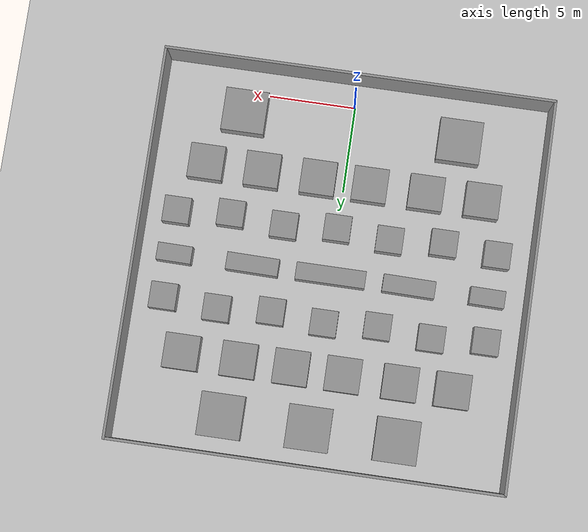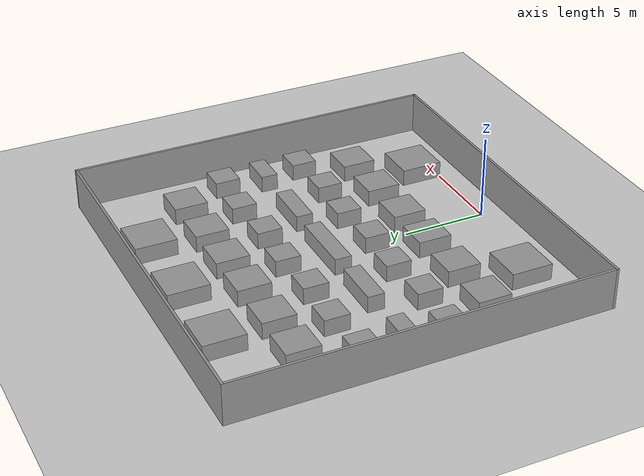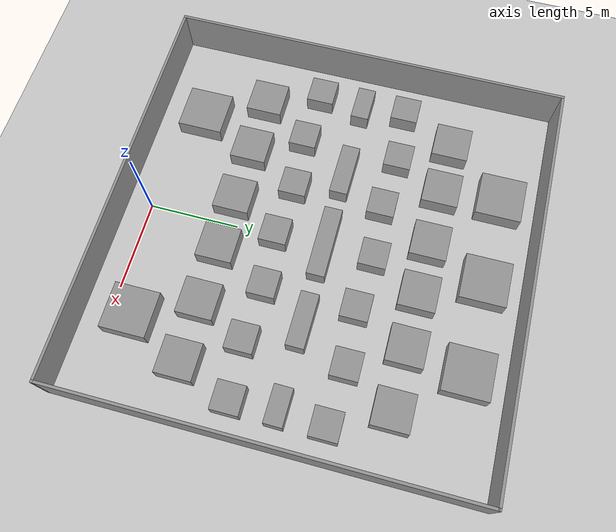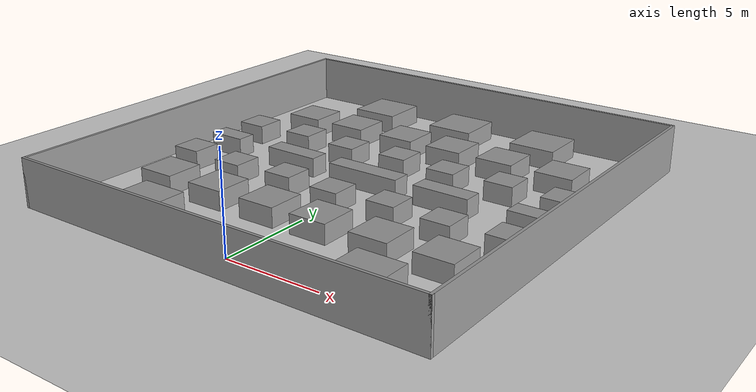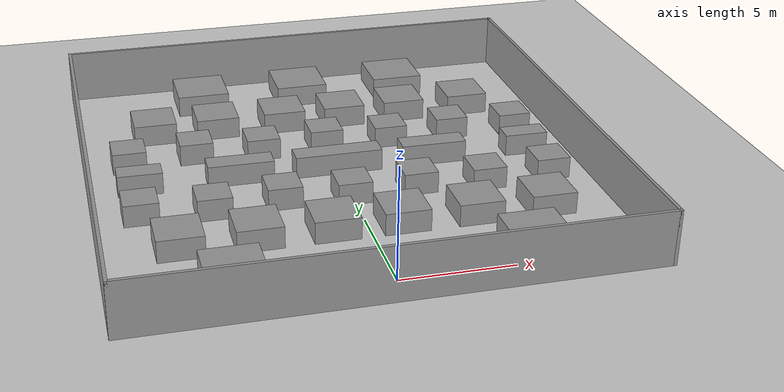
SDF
<sdf version="1.6">
 <world name="default">
  <light name="sun" type="directional">
   <pose>0 0 10 0 -0 0</pose>
   <diffuse>0.8 0.8 0.8 1</diffuse>
   <specular>0.2 0.2 0.2 1</specular>
   <attenuation>
    <range>1000</range>
    <constant>0.9</constant>
    <linear>0.01</linear>
    <quadratic>0.001</quadratic>
   </attenuation>
   <direction>-0.5 0.1 -0.9</direction>
   <spot><inner_angle>0</inner_angle><outer_angle>0</outer_angle><falloff>0</falloff></spot>
  </light>
  <model name="ground_plane">
   <static>1</static>
   <link name="link">
    <collision name="collision">
     <geometry><plane><normal>0 0 1</normal><size>100 100</size></plane></geometry>
     <surface>
      <contact><collide_bitmask>65535</collide_bitmask></contact>
      <friction><ode><mu>100</mu><mu2>50</mu2></ode></friction>
     </surface>
    </collision>
    <visual name="visual">
     <cast_shadows>0</cast_shadows>
     <geometry><plane><normal>0 0 1</normal><size>100 100</size></plane></geometry>
     <material>
      <script><uri>file://media/materials/scripts/gazebo.material</uri><name>Gazebo/Grey</name></script>
     </material>
    </visual>
   </link>
  </model>
  <gravity>0 0 -9.8</gravity>
  <magnetic_field>6e-06 2.3e-05 -4.2e-05</magnetic_field>
  <atmosphere type="adiabatic"/>
  <physics name="default_physics" default="0" type="ode">
   <max_step_size>0.001</max_step_size>
   <real_time_factor>1</real_time_factor>
   <real_time_update_rate>1000</real_time_update_rate>
  </physics>
  <scene><ambient>0.4 0.4 0.4 1</ambient><background>0.7 0.7 0.7 1</background><shadows>1</shadows></scene>
  <audio><device>default</device></audio>
  <spherical_coordinates>
   <surface_model>EARTH_WGS84</surface_model>
   <latitude_deg>0</latitude_deg>
   <longitude_deg>0</longitude_deg>
   <elevation>0</elevation>
   <heading_deg>0</heading_deg>
  </spherical_coordinates>
  <model name="unit_box_clone">
   <pose>4.99617 18.75 0.499939 0 4.9e-05 -7e-06</pose>
   <link name="link">
    <inertial>
     <mass>1</mass>
     <inertia>
      <ixx>0.166667</ixx>
      <ixy>0</ixy>
      <ixz>0</ixz>
      <iyy>0.166667</iyy>
      <iyz>0</iyz>
      <izz>0.166667</izz>
     </inertia>
    </inertial>
    <collision name="collision"><geometry><box><size>2.48699 2.49486 1</size></box></geometry></collision>
    <visual name="visual">
     <geometry><box><size>2.48699 2.49486 1</size></box></geometry>
     <material>
      <script><name>Gazebo/Grey</name><uri>file://media/materials/scripts/gazebo.material</uri></script>
     </material>
    </visual>
   </link>
  </model>
  <model name="unit_box_clone_0">
   <pose>-5.00383 18.75 0.499939 0 4.9e-05 -5e-06</pose>
   <link name="link">
    <inertial>
     <mass>1</mass>
     <inertia>
      <ixx>0.166667</ixx>
      <ixy>0</ixy>
      <ixz>0</ixz>
      <iyy>0.166667</iyy>
      <iyz>0</iyz>
      <izz>0.166667</izz>
     </inertia>
    </inertial>
    <collision name="collision"><geometry><box><size>2.48699 2.49486 1</size></box></geometry></collision>
    <visual name="visual">
     <geometry><box><size>2.48699 2.49486 1</size></box></geometry>
     <material>
      <script><name>Gazebo/Grey</name><uri>file://media/materials/scripts/gazebo.material</uri></script>
     </material>
    </visual>
   </link>
  </model>
  <model name="unit_box_clone_1">
   <pose>6.24617 1.25 0.499939 0 4.9e-05 -5e-06</pose>
   <link name="link">
    <inertial>
     <mass>1</mass>
     <inertia>
      <ixx>0.166667</ixx>
      <ixy>0</ixy>
      <ixz>0</ixz>
      <iyy>0.166667</iyy>
      <iyz>0</iyz>
      <izz>0.166667</izz>
     </inertia>
    </inertial>
    <collision name="collision"><geometry><box><size>2.48699 2.49486 1</size></box></geometry></collision>
    <visual name="visual">
     <geometry><box><size>2.48699 2.49486 1</size></box></geometry>
     <material>
      <script><name>Gazebo/Grey</name><uri>file://media/materials/scripts/gazebo.material</uri></script>
     </material>
    </visual>
   </link>
  </model>
  <model name="unit_box_clone_2">
   <pose>-6.25383 1.25 0.499939 0 4.9e-05 -5e-06</pose>
   <link name="link">
    <inertial>
     <mass>1</mass>
     <inertia>
      <ixx>0.166667</ixx>
      <ixy>0</ixy>
      <ixz>0</ixz>
      <iyy>0.166667</iyy>
      <iyz>0</iyz>
      <izz>0.166667</izz>
     </inertia>
    </inertial>
    <collision name="collision"><geometry><box><size>2.48699 2.49486 1</size></box></geometry></collision>
    <visual name="visual">
     <geometry><box><size>2.48699 2.49486 1</size></box></geometry>
     <material>
      <script><name>Gazebo/Grey</name><uri>file://media/materials/scripts/gazebo.material</uri></script>
     </material>
    </visual>
   </link>
  </model>
  <model name="unit_box_clone_clone">
   <pose>-1e-06 18.7514 0.499938 5e-05 -0 0.001456</pose>
   <link name="link">
    <inertial>
     <mass>1</mass>
     <inertia>
      <ixx>0.166667</ixx>
      <ixy>0</ixy>
      <ixz>0</ixz>
      <iyy>0.166667</iyy>
      <iyz>0</iyz>
      <izz>0.166667</izz>
     </inertia>
    </inertial>
    <collision name="collision"><geometry><box><size>2.48699 2.49486 1</size></box></geometry></collision>
    <visual name="visual">
     <geometry><box><size>2.48699 2.49486 1</size></box></geometry>
     <material>
      <script><name>Gazebo/Grey</name><uri>file://media/materials/scripts/gazebo.material</uri></script>
     </material>
    </visual>
   </link>
  </model>
  <model name="unit_box_clone_3">
   <pose>-4.75163 15.5 0.499986 0 -1.4e-05 0</pose>
   <link name="link">
    <inertial>
     <mass>1</mass>
     <inertia>
      <ixx>0.166667</ixx>
      <ixy>0</ixy>
      <ixz>0</ixz>
      <iyy>0.166667</iyy>
      <iyz>0</iyz>
      <izz>0.166667</izz>
     </inertia>
    </inertial>
    <collision name="collision"><geometry><box><size>2 1.99999 1</size></box></geometry></collision>
    <visual name="visual">
     <geometry><box><size>2 1.99999 1</size></box></geometry>
     <material>
      <script><name>Gazebo/Grey</name><uri>file://media/materials/scripts/gazebo.material</uri></script>
     </material>
    </visual>
   </link>
  </model>
  <model name="unit_box_clone_4">
   <pose>-1.50163 15.5 0.499986 0 -1.4e-05 0</pose>
   <link name="link">
    <inertial>
     <mass>1</mass>
     <inertia>
      <ixx>0.166667</ixx>
      <ixy>0</ixy>
      <ixz>0</ixz>
      <iyy>0.166667</iyy>
      <iyz>0</iyz>
      <izz>0.166667</izz>
     </inertia>
    </inertial>
    <collision name="collision"><geometry><box><size>2 1.99999 1</size></box></geometry></collision>
    <visual name="visual">
     <geometry><box><size>2 1.99999 1</size></box></geometry>
     <material>
      <script><name>Gazebo/Grey</name><uri>file://media/materials/scripts/gazebo.material</uri></script>
     </material>
    </visual>
   </link>
  </model>
  <model name="unit_box_clone_5">
   <pose>1.46463 15.5 0.499986 0 1.4e-05 1e-06</pose>
   <link name="link">
    <inertial>
     <mass>1</mass>
     <inertia>
      <ixx>0.166667</ixx>
      <ixy>0</ixy>
      <ixz>0</ixz>
      <iyy>0.166667</iyy>
      <iyz>0</iyz>
      <izz>0.166667</izz>
     </inertia>
    </inertial>
    <collision name="collision"><geometry><box><size>2 1.99999 1</size></box></geometry></collision>
    <visual name="visual">
     <geometry><box><size>2 1.99999 1</size></box></geometry>
     <material>
      <script><name>Gazebo/Grey</name><uri>file://media/materials/scripts/gazebo.material</uri></script>
     </material>
    </visual>
   </link>
  </model>
  <model name="unit_box_clone_6">
   <pose>7.74837 15.5 0.499986 0 -1.4e-05 0</pose>
   <link name="link">
    <inertial>
     <mass>1</mass>
     <inertia>
      <ixx>0.166667</ixx>
      <ixy>0</ixy>
      <ixz>0</ixz>
      <iyy>0.166667</iyy>
      <iyz>0</iyz>
      <izz>0.166667</izz>
     </inertia>
    </inertial>
    <collision name="collision"><geometry><box><size>2 1.99999 1</size></box></geometry></collision>
    <visual name="visual">
     <geometry><box><size>2 1.99999 1</size></box></geometry>
     <material>
      <script><name>Gazebo/Grey</name><uri>file://media/materials/scripts/gazebo.material</uri></script>
     </material>
    </visual>
   </link>
  </model>
  <model name="unit_box_clone_7">
   <pose>4.46893 15.5001 0.499986 0 1.4e-05 9.3e-05</pose>
   <link name="link">
    <inertial>
     <mass>1</mass>
     <inertia>
      <ixx>0.166667</ixx>
      <ixy>0</ixy>
      <ixz>0</ixz>
      <iyy>0.166667</iyy>
      <iyz>0</iyz>
      <izz>0.166667</izz>
     </inertia>
    </inertial>
    <collision name="collision"><geometry><box><size>2 1.99999 1</size></box></geometry></collision>
    <visual name="visual">
     <geometry><box><size>2 1.99999 1</size></box></geometry>
     <material>
      <script><name>Gazebo/Grey</name><uri>file://media/materials/scripts/gazebo.material</uri></script>
     </material>
    </visual>
   </link>
  </model>
  <model name="unit_box_clone_8">
   <pose>-8.00163 4.5 0.499986 0 -1.4e-05 0</pose>
   <link name="link">
    <inertial>
     <mass>1</mass>
     <inertia>
      <ixx>0.166667</ixx>
      <ixy>0</ixy>
      <ixz>0</ixz>
      <iyy>0.166667</iyy>
      <iyz>0</iyz>
      <izz>0.166667</izz>
     </inertia>
    </inertial>
    <collision name="collision"><geometry><box><size>2 1.99999 1</size></box></geometry></collision>
    <visual name="visual">
     <geometry><box><size>2 1.99999 1</size></box></geometry>
     <material>
      <script><name>Gazebo/Grey</name><uri>file://media/materials/scripts/gazebo.material</uri></script>
     </material>
    </visual>
   </link>
  </model>
  <model name="unit_box_clone_9">
   <pose>-4.74838 4.5 0.499986 0 1.4e-05 0</pose>
   <link name="link">
    <inertial>
     <mass>1</mass>
     <inertia>
      <ixx>0.166667</ixx>
      <ixy>0</ixy>
      <ixz>0</ixz>
      <iyy>0.166667</iyy>
      <iyz>0</iyz>
      <izz>0.166667</izz>
     </inertia>
    </inertial>
    <collision name="collision"><geometry><box><size>2 1.99999 1</size></box></geometry></collision>
    <visual name="visual">
     <geometry><box><size>2 1.99999 1</size></box></geometry>
     <material>
      <script><name>Gazebo/Grey</name><uri>file://media/materials/scripts/gazebo.material</uri></script>
     </material>
    </visual>
   </link>
  </model>
  <model name="unit_box_clone_10">
   <pose>-1.50163 4.5 0.499986 0 -1.4e-05 0</pose>
   <link name="link">
    <inertial>
     <mass>1</mass>
     <inertia>
      <ixx>0.166667</ixx>
      <ixy>0</ixy>
      <ixz>0</ixz>
      <iyy>0.166667</iyy>
      <iyz>0</iyz>
      <izz>0.166667</izz>
     </inertia>
    </inertial>
    <collision name="collision"><geometry><box><size>2 1.99999 1</size></box></geometry></collision>
    <visual name="visual">
     <geometry><box><size>2 1.99999 1</size></box></geometry>
     <material>
      <script><name>Gazebo/Grey</name><uri>file://media/materials/scripts/gazebo.material</uri></script>
     </material>
    </visual>
   </link>
  </model>
  <model name="unit_box_clone_11">
   <pose>1.50162 4.5 0.499986 0 1.4e-05 0</pose>
   <link name="link">
    <inertial>
     <mass>1</mass>
     <inertia>
      <ixx>0.166667</ixx>
      <ixy>0</ixy>
      <ixz>0</ixz>
      <iyy>0.166667</iyy>
      <iyz>0</iyz>
      <izz>0.166667</izz>
     </inertia>
    </inertial>
    <collision name="collision"><geometry><box><size>2 1.99999 1</size></box></geometry></collision>
    <visual name="visual">
     <geometry><box><size>2 1.99999 1</size></box></geometry>
     <material>
      <script><name>Gazebo/Grey</name><uri>file://media/materials/scripts/gazebo.material</uri></script>
     </material>
    </visual>
   </link>
  </model>
  <model name="unit_box_clone_12">
   <pose>4.75163 4.5 0.499986 0 1.4e-05 0</pose>
   <link name="link">
    <inertial>
     <mass>1</mass>
     <inertia>
      <ixx>0.166667</ixx>
      <ixy>0</ixy>
      <ixz>0</ixz>
      <iyy>0.166667</iyy>
      <iyz>0</iyz>
      <izz>0.166667</izz>
     </inertia>
    </inertial>
    <collision name="collision"><geometry><box><size>2 1.99999 1</size></box></geometry></collision>
    <visual name="visual">
     <geometry><box><size>2 1.99999 1</size></box></geometry>
     <material>
      <script><name>Gazebo/Grey</name><uri>file://media/materials/scripts/gazebo.material</uri></script>
     </material>
    </visual>
   </link>
  </model>
  <model name="unit_box_clone_13">
   <pose>8.00005 4.50076 0.499986 -1.4e-05 0 0</pose>
   <link name="link">
    <inertial>
     <mass>1</mass>
     <inertia>
      <ixx>0.166667</ixx>
      <ixy>0</ixy>
      <ixz>0</ixz>
      <iyy>0.166667</iyy>
      <iyz>0</iyz>
      <izz>0.166667</izz>
     </inertia>
    </inertial>
    <collision name="collision"><geometry><box><size>2 1.99999 1</size></box></geometry></collision>
    <visual name="visual">
     <geometry><box><size>2 1.99999 1</size></box></geometry>
     <material>
      <script><name>Gazebo/Grey</name><uri>file://media/materials/scripts/gazebo.material</uri></script>
     </material>
    </visual>
   </link>
  </model>
  <model name="unit_box_0">
   <pose>-9.2501 12.4999 0.499995 -6e-06 0 0.000111</pose>
   <link name="link">
    <inertial>
     <mass>1</mass>
     <inertia>
      <ixx>0.166667</ixx>
      <ixy>0</ixy>
      <ixz>0</ixz>
      <iyy>0.166667</iyy>
      <iyz>0</iyz>
      <izz>0.166667</izz>
     </inertia>
    </inertial>
    <collision name="collision"><geometry><box><size>1.53738 1.51579 1</size></box></geometry></collision>
    <visual name="visual">
     <geometry><box><size>1.53738 1.51579 1</size></box></geometry>
     <material>
      <script><name>Gazebo/Grey</name><uri>file://media/materials/scripts/gazebo.material</uri></script>
     </material>
    </visual>
   </link>
  </model>
  <model name="unit_box_0_clone">
   <pose>-6.14987 12.75 0.499995 -6e-06 0 5.7e-05</pose>
   <link name="link">
    <inertial>
     <mass>1</mass>
     <inertia>
      <ixx>0.166667</ixx>
      <ixy>0</ixy>
      <ixz>0</ixz>
      <iyy>0.166667</iyy>
      <iyz>0</iyz>
      <izz>0.166667</izz>
     </inertia>
    </inertial>
    <collision name="collision"><geometry><box><size>1.53738 1.5158 1</size></box></geometry></collision>
    <visual name="visual">
     <geometry><box><size>1.53738 1.5158 1</size></box></geometry>
     <material>
      <script><name>Gazebo/Grey</name><uri>file://media/materials/scripts/gazebo.material</uri></script>
     </material>
    </visual>
   </link>
  </model>
  <model name="unit_box_0_clone_0">
   <pose>-3.05003 12.4998 0.499995 0 6e-06 4.8e-05</pose>
   <link name="link">
    <inertial>
     <mass>1</mass>
     <inertia>
      <ixx>0.166667</ixx>
      <ixy>0</ixy>
      <ixz>0</ixz>
      <iyy>0.166667</iyy>
      <iyz>0</iyz>
      <izz>0.166667</izz>
     </inertia>
    </inertial>
    <collision name="collision"><geometry><box><size>1.53738 1.5158 1</size></box></geometry></collision>
    <visual name="visual">
     <geometry><box><size>1.53738 1.5158 1</size></box></geometry>
     <material>
      <script><name>Gazebo/Grey</name><uri>file://media/materials/scripts/gazebo.material</uri></script>
     </material>
    </visual>
   </link>
  </model>
  <model name="unit_box_0_clone_1">
   <pose>3.1e-05 12.7502 0.499995 0 -6e-06 3.7e-05</pose>
   <link name="link">
    <inertial>
     <mass>1</mass>
     <inertia>
      <ixx>0.166667</ixx>
      <ixy>0</ixy>
      <ixz>0</ixz>
      <iyy>0.166667</iyy>
      <iyz>0</iyz>
      <izz>0.166667</izz>
     </inertia>
    </inertial>
    <collision name="collision"><geometry><box><size>1.53738 1.5158 1</size></box></geometry></collision>
    <visual name="visual">
     <geometry><box><size>1.53738 1.5158 1</size></box></geometry>
     <material>
      <script><name>Gazebo/Grey</name><uri>file://media/materials/scripts/gazebo.material</uri></script>
     </material>
    </visual>
   </link>
  </model>
  <model name="unit_box_0_clone_2">
   <pose>3.05003 12.5001 0.499995 0 -6e-06 3.5e-05</pose>
   <link name="link">
    <inertial>
     <mass>1</mass>
     <inertia>
      <ixx>0.166667</ixx>
      <ixy>0</ixy>
      <ixz>0</ixz>
      <iyy>0.166667</iyy>
      <iyz>0</iyz>
      <izz>0.166667</izz>
     </inertia>
    </inertial>
    <collision name="collision"><geometry><box><size>1.53738 1.5158 1</size></box></geometry></collision>
    <visual name="visual">
     <geometry><box><size>1.53738 1.5158 1</size></box></geometry>
     <material>
      <script><name>Gazebo/Grey</name><uri>file://media/materials/scripts/gazebo.material</uri></script>
     </material>
    </visual>
   </link>
  </model>
  <model name="unit_box_0_clone_3">
   <pose>6.15003 12.7501 0.499995 0 -6e-06 3.4e-05</pose>
   <link name="link">
    <inertial>
     <mass>1</mass>
     <inertia>
      <ixx>0.166667</ixx>
      <ixy>0</ixy>
      <ixz>0</ixz>
      <iyy>0.166667</iyy>
      <iyz>0</iyz>
      <izz>0.166667</izz>
     </inertia>
    </inertial>
    <collision name="collision"><geometry><box><size>1.53738 1.5158 1</size></box></geometry></collision>
    <visual name="visual">
     <geometry><box><size>1.53738 1.5158 1</size></box></geometry>
     <material>
      <script><name>Gazebo/Grey</name><uri>file://media/materials/scripts/gazebo.material</uri></script>
     </material>
    </visual>
   </link>
  </model>
  <model name="unit_box_0_clone_4">
   <pose>9.24998 12.4999 0.499995 0 6e-06 5.9e-05</pose>
   <link name="link">
    <inertial>
     <mass>1</mass>
     <inertia>
      <ixx>0.166667</ixx>
      <ixy>0</ixy>
      <ixz>0</ixz>
      <iyy>0.166667</iyy>
      <iyz>0</iyz>
      <izz>0.166667</izz>
     </inertia>
    </inertial>
    <collision name="collision"><geometry><box><size>1.53738 1.5158 1</size></box></geometry></collision>
    <visual name="visual">
     <geometry><box><size>1.53738 1.5158 1</size></box></geometry>
     <material>
      <script><name>Gazebo/Grey</name><uri>file://media/materials/scripts/gazebo.material</uri></script>
     </material>
    </visual>
   </link>
  </model>
  <model name="unit_box_0_clone_4_clone">
   <pose>9.24999 7.49988 0.499995 0 6e-06 5.7e-05</pose>
   <link name="link">
    <inertial>
     <mass>1</mass>
     <inertia>
      <ixx>0.166667</ixx>
      <ixy>0</ixy>
      <ixz>0</ixz>
      <iyy>0.166667</iyy>
      <iyz>0</iyz>
      <izz>0.166667</izz>
     </inertia>
    </inertial>
    <collision name="collision"><geometry><box><size>1.53738 1.5158 1</size></box></geometry></collision>
    <visual name="visual">
     <geometry><box><size>1.53738 1.5158 1</size></box></geometry>
     <material>
      <script><name>Gazebo/Grey</name><uri>file://media/materials/scripts/gazebo.material</uri></script>
     </material>
    </visual>
   </link>
  </model>
  <model name="unit_box_0_clone_4_clone_0">
   <pose>6.14991 7.25005 0.499995 -6e-06 -0 0.000106</pose>
   <link name="link">
    <inertial>
     <mass>1</mass>
     <inertia>
      <ixx>0.166667</ixx>
      <ixy>0</ixy>
      <ixz>0</ixz>
      <iyy>0.166667</iyy>
      <iyz>0</iyz>
      <izz>0.166667</izz>
     </inertia>
    </inertial>
    <collision name="collision"><geometry><box><size>1.53738 1.5158 1</size></box></geometry></collision>
    <visual name="visual">
     <geometry><box><size>1.53738 1.5158 1</size></box></geometry>
     <material>
      <script><name>Gazebo/Grey</name><uri>file://media/materials/scripts/gazebo.material</uri></script>
     </material>
    </visual>
   </link>
  </model>
  <model name="unit_box_0_clone_4_clone_1">
   <pose>3.05009 7.50005 0.499995 -6e-06 -0 -1.5e-05</pose>
   <link name="link">
    <inertial>
     <mass>1</mass>
     <inertia>
      <ixx>0.166667</ixx>
      <ixy>0</ixy>
      <ixz>0</ixz>
      <iyy>0.166667</iyy>
      <iyz>0</iyz>
      <izz>0.166667</izz>
     </inertia>
    </inertial>
    <collision name="collision"><geometry><box><size>1.53738 1.5158 1</size></box></geometry></collision>
    <visual name="visual">
     <geometry><box><size>1.53738 1.5158 1</size></box></geometry>
     <material>
      <script><name>Gazebo/Grey</name><uri>file://media/materials/scripts/gazebo.material</uri></script>
     </material>
    </visual>
   </link>
  </model>
  <model name="unit_box_0_clone_4_clone_2">
   <pose>5e-05 7.2499 0.499995 -0 6e-06 -2.2e-05</pose>
   <link name="link">
    <inertial>
     <mass>1</mass>
     <inertia>
      <ixx>0.166667</ixx>
      <ixy>0</ixy>
      <ixz>0</ixz>
      <iyy>0.166667</iyy>
      <iyz>0</iyz>
      <izz>0.166667</izz>
     </inertia>
    </inertial>
    <collision name="collision"><geometry><box><size>1.53738 1.5158 1</size></box></geometry></collision>
    <visual name="visual">
     <geometry><box><size>1.53738 1.5158 1</size></box></geometry>
     <material>
      <script><name>Gazebo/Grey</name><uri>file://media/materials/scripts/gazebo.material</uri></script>
     </material>
    </visual>
   </link>
  </model>
  <model name="unit_box_0_clone_4_clone_3">
   <pose>-3.04996 7.49991 0.499995 0 6e-06 -2.5e-05</pose>
   <link name="link">
    <inertial>
     <mass>1</mass>
     <inertia>
      <ixx>0.166667</ixx>
      <ixy>0</ixy>
      <ixz>0</ixz>
      <iyy>0.166667</iyy>
      <iyz>0</iyz>
      <izz>0.166667</izz>
     </inertia>
    </inertial>
    <collision name="collision"><geometry><box><size>1.53738 1.5158 1</size></box></geometry></collision>
    <visual name="visual">
     <geometry><box><size>1.53738 1.5158 1</size></box></geometry>
     <material>
      <script><name>Gazebo/Grey</name><uri>file://media/materials/scripts/gazebo.material</uri></script>
     </material>
    </visual>
   </link>
  </model>
  <model name="unit_box_0_clone_4_clone_4">
   <pose>-6.15003 7.25009 0.499995 -0 -6e-06 -3.6e-05</pose>
   <link name="link">
    <inertial>
     <mass>1</mass>
     <inertia>
      <ixx>0.166667</ixx>
      <ixy>0</ixy>
      <ixz>0</ixz>
      <iyy>0.166667</iyy>
      <iyz>0</iyz>
      <izz>0.166667</izz>
     </inertia>
    </inertial>
    <collision name="collision"><geometry><box><size>1.53738 1.5158 1</size></box></geometry></collision>
    <visual name="visual">
     <geometry><box><size>1.53738 1.5158 1</size></box></geometry>
     <material>
      <script><name>Gazebo/Grey</name><uri>file://media/materials/scripts/gazebo.material</uri></script>
     </material>
    </visual>
   </link>
  </model>
  <model name="unit_box_0_clone_4_clone_5">
   <pose>-9.25003 7.50009 0.499995 0 -6e-06 4e-06</pose>
   <link name="link">
    <inertial>
     <mass>1</mass>
     <inertia>
      <ixx>0.166667</ixx>
      <ixy>0</ixy>
      <ixz>0</ixz>
      <iyy>0.166667</iyy>
      <iyz>0</iyz>
      <izz>0.166667</izz>
     </inertia>
    </inertial>
    <collision name="collision"><geometry><box><size>1.53738 1.5158 1</size></box></geometry></collision>
    <visual name="visual">
     <geometry><box><size>1.53738 1.5158 1</size></box></geometry>
     <material>
      <script><name>Gazebo/Grey</name><uri>file://media/materials/scripts/gazebo.material</uri></script>
     </material>
    </visual>
   </link>
  </model>
  <model name="unit_box_1">
   <pose>-8.99998 10 0.499995 -5e-06 3e-06 -0.012997</pose>
   <link name="link">
    <inertial>
     <mass>1</mass>
     <inertia>
      <ixx>0.166667</ixx>
      <ixy>0</ixy>
      <ixz>0</ixz>
      <iyy>0.166667</iyy>
      <iyz>0</iyz>
      <izz>0.166667</izz>
     </inertia>
    </inertial>
    <collision name="collision"><geometry><box><size>2 1 1</size></box></geometry></collision>
    <visual name="visual">
     <geometry><box><size>2 1 1</size></box></geometry>
     <material>
      <script><name>Gazebo/Grey</name><uri>file://media/materials/scripts/gazebo.material</uri></script>
     </material>
    </visual>
   </link>
  </model>
  <model name="unit_box_2">
   <pose>-4.49989 10 0.499996 5e-06 -1e-06 -0.013449</pose>
   <link name="link">
    <inertial>
     <mass>1</mass>
     <inertia>
      <ixx>0.166667</ixx>
      <ixy>0</ixy>
      <ixz>0</ixz>
      <iyy>0.166667</iyy>
      <iyz>0</iyz>
      <izz>0.166667</izz>
     </inertia>
    </inertial>
    <collision name="collision"><geometry><box><size>3 1 1</size></box></geometry></collision>
    <visual name="visual">
     <geometry><box><size>3 1 1</size></box></geometry>
     <material>
      <script><name>Gazebo/Grey</name><uri>file://media/materials/scripts/gazebo.material</uri></script>
     </material>
    </visual>
   </link>
  </model>
  <model name="unit_box_3">
   <pose>-0.000104 10.0004 0.5 -1e-06 0 2e-06</pose>
   <link name="link">
    <inertial>
     <mass>1</mass>
     <inertia>
      <ixx>0.166667</ixx>
      <ixy>0</ixy>
      <ixz>0</ixz>
      <iyy>0.166667</iyy>
      <iyz>0</iyz>
      <izz>0.166667</izz>
     </inertia>
    </inertial>
    <collision name="collision"><geometry><box><size>4 1 1</size></box></geometry></collision>
    <visual name="visual">
     <geometry><box><size>4 1 1</size></box></geometry>
     <material>
      <script><name>Gazebo/Grey</name><uri>file://media/materials/scripts/gazebo.material</uri></script>
     </material>
    </visual>
   </link>
  </model>
  <model name="unit_box_clone_3_clone">
   <pose>-7.75082 15.5 0.499986 0 -1.4e-05 0</pose>
   <link name="link">
    <inertial>
     <mass>1</mass>
     <inertia>
      <ixx>0.166667</ixx>
      <ixy>0</ixy>
      <ixz>0</ixz>
      <iyy>0.166667</iyy>
      <iyz>0</iyz>
      <izz>0.166667</izz>
     </inertia>
    </inertial>
    <collision name="collision"><geometry><box><size>2 1.99999 1</size></box></geometry></collision>
    <visual name="visual">
     <geometry><box><size>2 1.99999 1</size></box></geometry>
     <material>
      <script><name>Gazebo/Grey</name><uri>file://media/materials/scripts/gazebo.material</uri></script>
     </material>
    </visual>
   </link>
  </model>
  <model name="unit_box_1_clone">
   <pose>9 10 0.499995 -6e-06 2e-06 -0.013075</pose>
   <link name="link">
    <inertial>
     <mass>1</mass>
     <inertia>
      <ixx>0.166667</ixx>
      <ixy>0</ixy>
      <ixz>0</ixz>
      <iyy>0.166667</iyy>
      <iyz>0</iyz>
      <izz>0.166667</izz>
     </inertia>
    </inertial>
    <collision name="collision"><geometry><box><size>2 1 1</size></box></geometry></collision>
    <visual name="visual">
     <geometry><box><size>2 1 1</size></box></geometry>
     <material>
      <script><name>Gazebo/Grey</name><uri>file://media/materials/scripts/gazebo.material</uri></script>
     </material>
    </visual>
   </link>
  </model>
  <model name="unit_box_2_clone">
   <pose>4.49994 9.99999 0.5 0 -0 -0.013451</pose>
   <link name="link">
    <inertial>
     <mass>1</mass>
     <inertia>
      <ixx>0.166667</ixx>
      <ixy>0</ixy>
      <ixz>0</ixz>
      <iyy>0.166667</iyy>
      <iyz>0</iyz>
      <izz>0.166667</izz>
     </inertia>
    </inertial>
    <collision name="collision"><geometry><box><size>3 1 1</size></box></geometry></collision>
    <visual name="visual">
     <geometry><box><size>3 1 1</size></box></geometry>
     <material>
      <script><name>Gazebo/Grey</name><uri>file://media/materials/scripts/gazebo.material</uri></script>
     </material>
    </visual>
   </link>
  </model>
  <model name="walls">
   <pose>-0.075801 9.72065 0 0 -0 0</pose>
   <link name="Wall_18">
    <collision name="Wall_18_Collision">
     <geometry><box><size>22.5 0.15 2.5</size></box></geometry>
     <pose>0 0 1.25 0 -0 0</pose>
    </collision>
    <visual name="Wall_18_Visual">
     <pose>0 0 1.25 0 -0 0</pose>
     <geometry><box><size>22.5 0.15 2.5</size></box></geometry>
     <material>
      <script><uri>file://media/materials/scripts/gazebo.material</uri><name>Gazebo/Grey</name></script>
      <ambient>1 1 1 1</ambient>
     </material>
     <meta><layer>0</layer></meta>
    </visual>
    <pose>-11.175 0 0 0 -0 1.5708</pose>
   </link>
   <link name="Wall_19">
    <collision name="Wall_19_Collision">
     <geometry><box><size>22.5 0.15 2.5</size></box></geometry>
     <pose>0 0 1.25 0 -0 0</pose>
    </collision>
    <visual name="Wall_19_Visual">
     <pose>0 0 1.25 0 -0 0</pose>
     <geometry><box><size>22.5 0.15 2.5</size></box></geometry>
     <material>
      <script><uri>file://media/materials/scripts/gazebo.material</uri><name>Gazebo/Grey</name></script>
      <ambient>1 1 1 1</ambient>
     </material>
     <meta><layer>0</layer></meta>
    </visual>
    <pose>0 11.175 0 0 -0 0</pose>
   </link>
   <link name="Wall_20">
    <collision name="Wall_20_Collision">
     <geometry><box><size>22.5 0.15 2.5</size></box></geometry>
     <pose>0 0 1.25 0 -0 0</pose>
    </collision>
    <visual name="Wall_20_Visual">
     <pose>0 0 1.25 0 -0 0</pose>
     <geometry><box><size>22.5 0.15 2.5</size></box></geometry>
     <material>
      <script><uri>file://media/materials/scripts/gazebo.material</uri><name>Gazebo/Grey</name></script>
      <ambient>1 1 1 1</ambient>
     </material>
     <meta><layer>0</layer></meta>
    </visual>
    <pose>11.175 0 0 0 -0 -1.5708</pose>
   </link>
   <link name="Wall_4">
    <collision name="Wall_4_Collision">
     <geometry><box><size>22.5 0.15 2.5</size></box></geometry>
     <pose>0 0 1.25 0 -0 0</pose>
    </collision>
    <visual name="Wall_4_Visual">
     <pose>0 0 1.25 0 -0 0</pose>
     <geometry><box><size>22.5 0.15 2.5</size></box></geometry>
     <material>
      <script><uri>file://media/materials/scripts/gazebo.material</uri><name>Gazebo/Grey</name></script>
      <ambient>1 1 1 1</ambient>
     </material>
     <meta><layer>0</layer></meta>
    </visual>
    <pose>0 -11.175 0 0 -0 0</pose>
   </link>
   <static>1</static>
  </model>
 </world>
</sdf>
